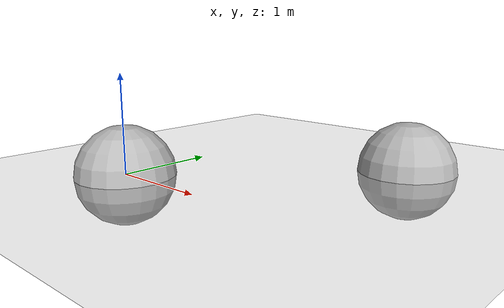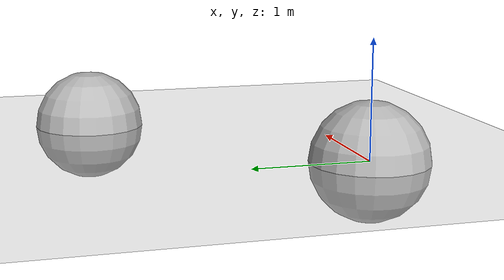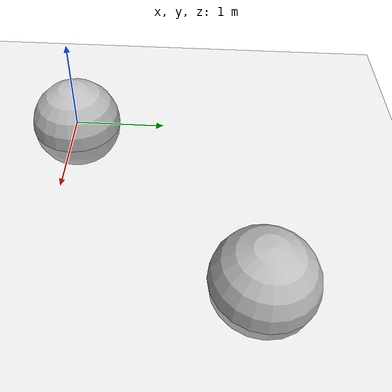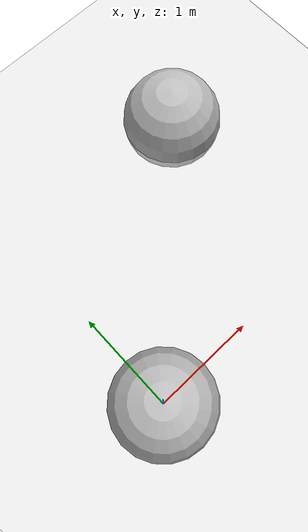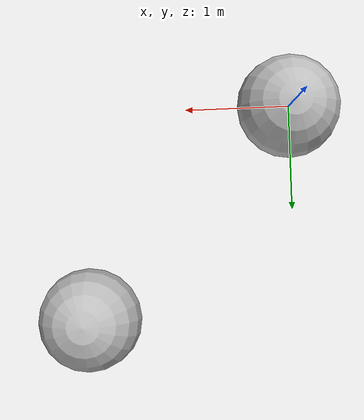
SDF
<?xml version="1.0" ?>
<sdf version="1.4">
  <world name="default">

    <!-- A ground plane -->
    <include>
      <uri>model://ground_plane</uri>
    </include>

    <!-- A global light source -->
    <include>
      <uri>model://sun</uri>
    </include>

    <!-- Load the plugin for Razer Hydra -->
    <plugin name="hydra" filename="libHydraPlugin.so"></plugin>

    <!-- A sphere controlled by Hydra-->
    <model name="sphere">
      <pose>0 0 0 0 0 0</pose>
      <link name="link">
        <collision name="collision">
          <geometry>
            <sphere>
              <radius>0.5</radius>
            </sphere>
          </geometry>
        </collision>
        <visual name="visual">
          <geometry>
            <sphere>
              <radius>0.5</radius>
            </sphere>
          </geometry>
        </visual>
      </link>

      <!-- Load a plugin to control the sphere with Hydra -->
      <plugin name='sphere_ctroller' filename='libHydraDemoPlugin.so'>
        <topic>hydra0</topic>
      </plugin>

    </model>

    <!-- A sphere controlled by Hydra-->
    <model name="sphere2">
      <pose>2 2 0 0 0 0</pose>
      <link name="link">
        <collision name="collision">
          <geometry>
            <sphere>
              <radius>0.5</radius>
            </sphere>
          </geometry>
        </collision>
        <visual name="visual">
          <geometry>
            <sphere>
              <radius>0.5</radius>
            </sphere>
          </geometry>
        </visual>
      </link>

      <!-- Load a plugin to control the sphere with Hydra -->
      <plugin name='sphere_ctroller' filename='libHydraDemoPlugin.so'>
        <topic>hydra1</topic>
      </plugin>

    </model>

</world>
</sdf>
